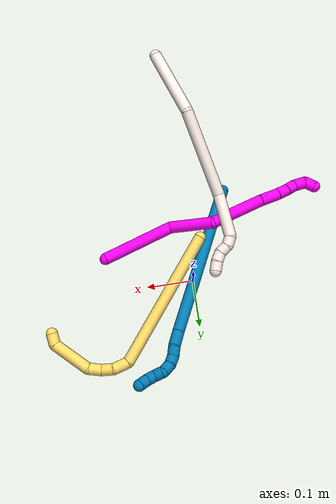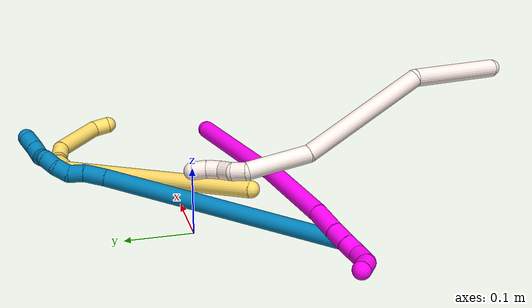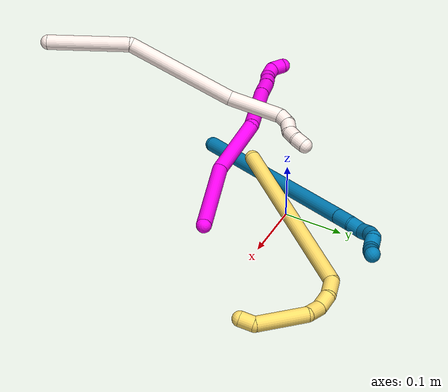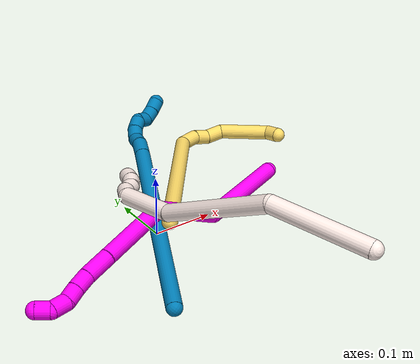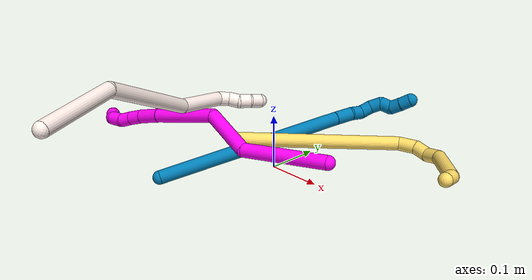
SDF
<sdf version="1.7">
 <world name="default">
  <model name="photoneo_s_sensor">
   <static>1</static>
   <pose>0 0 2 1.57079 1.57079 3.14159</pose>
   <link name="link">
    <inertial><mass>0.1</mass></inertial>
    <sensor name="sensor" type="depth">
     <update_rate>30</update_rate>
     <camera>
      <horizontal_fov>1.22</horizontal_fov>
      <image><width>1920</width><height>1200</height><format>B8G8R8</format></image>
      <clip><near>0.1</near><far>4</far></clip>
      <depth_camera><output>points</output></depth_camera>
     </camera>
     <plugin name="camera_plugin" filename="libgazebo_ros_depth_camera.so">
      <baseline>0.2</baseline>
      <alwaysOn>1</alwaysOn>
      <updateRate>0.0</updateRate>
      <cameraName>camera_ir</cameraName>
      <imageTopicName>/camera/color/image_raw</imageTopicName>
      <cameraInfoTopicName>/camera/color/camera_info</cameraInfoTopicName>
      <depthImageTopicName>/camera/depth/image_raw</depthImageTopicName>
      <depthImageCameraInfoTopicName>/camera/depth/camera_info</depthImageCameraInfoTopicName>
      <pointCloudTopicName>/camera/depth/points</pointCloudTopicName>
      <frameName>fr_optical</frameName>
      <pointCloudCutoff>0.1</pointCloudCutoff>
      <pointCloudCutoffMax>2.0</pointCloudCutoffMax>
      <distortionK1>0</distortionK1>
      <distortionK2>0</distortionK2>
      <distortionK3>0</distortionK3>
      <distortionT1>0</distortionT1>
      <distortionT2>0</distortionT2>
      <CxPrime>0</CxPrime>
      <Cx>0</Cx>
      <Cy>0</Cy>
      <focalLength>0</focalLength>
      <hackBaseline>0</hackBaseline>
     </plugin>
    </sensor>
   </link>
  </model>
  <model name="bin">
   <static>1</static>
   <link name="bottom">
    <collision name="collision-bottom">
     <pose>0 0 -0.01 0 -0 0</pose>
     <geometry><box><size>0.8 0.6 0.02</size></box></geometry>
     <surface>
      <friction><ode><mu>100</mu><mu2>100</mu2></ode></friction>
      <contact><collide_bitmask>65535</collide_bitmask></contact>
     </surface>
    </collision>
   </link>
   <link name="west_wall">
    <collision name="collision-west_wall">
     <pose>-0.41 0 0.1 0 -0 0</pose>
     <geometry><box><size>0.02 0.6 0.2</size></box></geometry>
     <surface>
      <friction><ode><mu>100</mu><mu2>100</mu2></ode></friction>
      <contact><collide_bitmask>65535</collide_bitmask></contact>
     </surface>
    </collision>
   </link>
   <link name="east_wall">
    <collision name="collision-east_wall">
     <pose>0.41 0 0.1 0 -0 0</pose>
     <geometry><box><size>0.02 0.6 0.2</size></box></geometry>
     <surface>
      <friction><ode><mu>100</mu><mu2>100</mu2></ode></friction>
      <contact><collide_bitmask>65535</collide_bitmask></contact>
     </surface>
    </collision>
   </link>
   <link name="south_wall">
    <collision name="collision-south_wall">
     <pose>0 -0.31 0.1 0 -0 0</pose>
     <geometry><box><size>0.8 0.02 0.2</size></box></geometry>
     <surface>
      <friction><ode><mu>100</mu><mu2>100</mu2></ode></friction>
      <contact><collide_bitmask>65535</collide_bitmask></contact>
     </surface>
    </collision>
   </link>
   <link name="north_wall">
    <collision name="collision-north_wall">
     <pose>0 0.31 0.1 0 -0 0</pose>
     <geometry><box><size>0.8 0.02 0.2</size></box></geometry>
     <surface>
      <friction><ode><mu>100</mu><mu2>100</mu2></ode></friction>
      <contact><collide_bitmask>65535</collide_bitmask></contact>
     </surface>
    </collision>
   </link>
  </model>
  <model name="5">
   <static>0</static>
   <link name="5">
    <collision name="collision-cylinder-e_1_1_4">
     <pose>0.017879 0.034262 0.146194 -0.230203 0.11851 -0.013717</pose>
     <geometry><cylinder><radius>0.0125</radius><length>0.302432</length></cylinder></geometry>
     <surface>
      <friction><ode><mu>1.16</mu><mu2>1.16</mu2><slip1>0</slip1><slip2>0</slip2></ode></friction>
      <contact><ode><kp>1e+06</kp><kd>1</kd><max_vel>0</max_vel><min_depth>0.001</min_depth></ode></contact>
     </surface>
    </collision>
    <visual name="visual-cylinder-e_1_1_4">
     <pose>0.017879 0.034262 0.146194 -0.230203 0.11851 -0.013717</pose>
     <geometry><cylinder><radius>0.0125</radius><length>0.302432</length></cylinder></geometry>
     <material><ambient>1 0.858824 0.4 1</ambient></material>
    </visual>
    <collision name="collision-cylinder-e_2_4_5">
     <pose>0.046618 0.073848 0.303753 -0.438151 0.713349 -0.165544</pose>
     <geometry><cylinder><radius>0.0125</radius><length>0.033194</length></cylinder></geometry>
     <surface>
      <friction><ode><mu>1.16</mu><mu2>1.16</mu2><slip1>0</slip1><slip2>0</slip2></ode></friction>
      <contact><ode><kp>1e+06</kp><kd>1</kd><max_vel>0</max_vel><min_depth>0.001</min_depth></ode></contact>
     </surface>
    </collision>
    <visual name="visual-cylinder-e_2_4_5">
     <pose>0.046618 0.073848 0.303753 -0.438151 0.713349 -0.165544</pose>
     <geometry><cylinder><radius>0.0125</radius><length>0.033194</length></cylinder></geometry>
     <material><ambient>1 0.858824 0.4 1</ambient></material>
    </visual>
    <collision name="collision-cylinder-e_3_5_6">
     <pose>0.067691 0.08614 0.319669 -0.99213 0.887061 -0.503349</pose>
     <geometry><cylinder><radius>0.0125</radius><length>0.026348</length></cylinder></geometry>
     <surface>
      <friction><ode><mu>1.16</mu><mu2>1.16</mu2><slip1>0</slip1><slip2>0</slip2></ode></friction>
      <contact><ode><kp>1e+06</kp><kd>1</kd><max_vel>0</max_vel><min_depth>0.001</min_depth></ode></contact>
     </surface>
    </collision>
    <visual name="visual-cylinder-e_3_5_6">
     <pose>0.067691 0.08614 0.319669 -0.99213 0.887061 -0.503349</pose>
     <geometry><cylinder><radius>0.0125</radius><length>0.026348</length></cylinder></geometry>
     <material><ambient>1 0.858824 0.4 1</ambient></material>
    </visual>
    <collision name="collision-cylinder-e_4_6_7">
     <pose>0.091731 0.094982 0.327974 -0.463251 1.27618 -0.346314</pose>
     <geometry><cylinder><radius>0.0125</radius><length>0.0289</length></cylinder></geometry>
     <surface>
      <friction><ode><mu>1.16</mu><mu2>1.16</mu2><slip1>0</slip1><slip2>0</slip2></ode></friction>
      <contact><ode><kp>1e+06</kp><kd>1</kd><max_vel>0</max_vel><min_depth>0.001</min_depth></ode></contact>
     </surface>
    </collision>
    <visual name="visual-cylinder-e_4_6_7">
     <pose>0.091731 0.094982 0.327974 -0.463251 1.27618 -0.346314</pose>
     <geometry><cylinder><radius>0.0125</radius><length>0.0289</length></cylinder></geometry>
     <material><ambient>1 0.858824 0.4 1</ambient></material>
    </visual>
    <collision name="collision-cylinder-e_5_7_8">
     <pose>0.145317 0.106813 0.320263 -2.42655 1.20597 -2.14735</pose>
     <geometry><cylinder><radius>0.0125</radius><length>0.085119</length></cylinder></geometry>
     <surface>
      <friction><ode><mu>1.16</mu><mu2>1.16</mu2><slip1>0</slip1><slip2>0</slip2></ode></friction>
      <contact><ode><kp>1e+06</kp><kd>1</kd><max_vel>0</max_vel><min_depth>0.001</min_depth></ode></contact>
     </surface>
    </collision>
    <visual name="visual-cylinder-e_5_7_8">
     <pose>0.145317 0.106813 0.320263 -2.42655 1.20597 -2.14735</pose>
     <geometry><cylinder><radius>0.0125</radius><length>0.085119</length></cylinder></geometry>
     <material><ambient>1 0.858824 0.4 1</ambient></material>
    </visual>
    <collision name="collision-cylinder-e_6_8_2">
     <pose>0.192521 0.116312 0.299392 3.09316 0.669044 3.00245</pose>
     <geometry><cylinder><radius>0.0125</radius><length>0.024007</length></cylinder></geometry>
     <surface>
      <friction><ode><mu>1.16</mu><mu2>1.16</mu2><slip1>0</slip1><slip2>0</slip2></ode></friction>
      <contact><ode><kp>1e+06</kp><kd>1</kd><max_vel>0</max_vel><min_depth>0.001</min_depth></ode></contact>
     </surface>
    </collision>
    <visual name="visual-cylinder-e_6_8_2">
     <pose>0.192521 0.116312 0.299392 3.09316 0.669044 3.00245</pose>
     <geometry><cylinder><radius>0.0125</radius><length>0.024007</length></cylinder></geometry>
     <material><ambient>1 0.858824 0.4 1</ambient></material>
    </visual>
    <collision name="collision-sphere-2">
     <pose>0.199966 0.115857 0.289988 0 -0 0</pose>
     <geometry><sphere><radius>0.0125</radius></sphere></geometry>
     <surface>
      <friction><ode><mu>1.16</mu><mu2>1.16</mu2><slip1>0</slip1><slip2>0</slip2></ode></friction>
      <contact><ode><kp>1e+06</kp><kd>1</kd><max_vel>0</max_vel><min_depth>0.001</min_depth></ode></contact>
     </surface>
    </collision>
    <visual name="visual-sphere-2">
     <pose>0.199966 0.115857 0.289988 0 -0 0</pose>
     <geometry><sphere><radius>0.0125</radius></sphere></geometry>
     <material><ambient>1 0.858824 0.4 1</ambient></material>
    </visual>
    <collision name="collision-sphere-4">
     <pose>0.035757 0.068524 0.292389 0 -0 0</pose>
     <geometry><sphere><radius>0.0125</radius></sphere></geometry>
     <surface>
      <friction><ode><mu>1.16</mu><mu2>1.16</mu2><slip1>0</slip1><slip2>0</slip2></ode></friction>
      <contact><ode><kp>1e+06</kp><kd>1</kd><max_vel>0</max_vel><min_depth>0.001</min_depth></ode></contact>
     </surface>
    </collision>
    <visual name="visual-sphere-4">
     <pose>0.035757 0.068524 0.292389 0 -0 0</pose>
     <geometry><sphere><radius>0.0125</radius></sphere></geometry>
     <material><ambient>1 0.858824 0.4 1</ambient></material>
    </visual>
    <collision name="collision-sphere-1">
     <geometry><sphere><radius>0.0125</radius></sphere></geometry>
     <surface>
      <friction><ode><mu>1.16</mu><mu2>1.16</mu2><slip1>0</slip1><slip2>0</slip2></ode></friction>
      <contact><ode><kp>1e+06</kp><kd>1</kd><max_vel>0</max_vel><min_depth>0.001</min_depth></ode></contact>
     </surface>
    </collision>
    <visual name="visual-sphere-1">
     <geometry><sphere><radius>0.0125</radius></sphere></geometry>
     <material><ambient>1 0.858824 0.4 1</ambient></material>
    </visual>
    <collision name="collision-sphere-8">
     <pose>0.185076 0.116768 0.308797 0 -0 0</pose>
     <geometry><sphere><radius>0.0125</radius></sphere></geometry>
     <surface>
      <friction><ode><mu>1.16</mu><mu2>1.16</mu2><slip1>0</slip1><slip2>0</slip2></ode></friction>
      <contact><ode><kp>1e+06</kp><kd>1</kd><max_vel>0</max_vel><min_depth>0.001</min_depth></ode></contact>
     </surface>
    </collision>
    <visual name="visual-sphere-8">
     <pose>0.185076 0.116768 0.308797 0 -0 0</pose>
     <geometry><sphere><radius>0.0125</radius></sphere></geometry>
     <material><ambient>1 0.858824 0.4 1</ambient></material>
    </visual>
    <collision name="collision-sphere-5">
     <pose>0.057478 0.079173 0.315118 0 -0 0</pose>
     <geometry><sphere><radius>0.0125</radius></sphere></geometry>
     <surface>
      <friction><ode><mu>1.16</mu><mu2>1.16</mu2><slip1>0</slip1><slip2>0</slip2></ode></friction>
      <contact><ode><kp>1e+06</kp><kd>1</kd><max_vel>0</max_vel><min_depth>0.001</min_depth></ode></contact>
     </surface>
    </collision>
    <visual name="visual-sphere-5">
     <pose>0.057478 0.079173 0.315118 0 -0 0</pose>
     <geometry><sphere><radius>0.0125</radius></sphere></geometry>
     <material><ambient>1 0.858824 0.4 1</ambient></material>
    </visual>
    <collision name="collision-sphere-6">
     <pose>0.077904 0.093107 0.324221 0 -0 0</pose>
     <geometry><sphere><radius>0.0125</radius></sphere></geometry>
     <surface>
      <friction><ode><mu>1.16</mu><mu2>1.16</mu2><slip1>0</slip1><slip2>0</slip2></ode></friction>
      <contact><ode><kp>1e+06</kp><kd>1</kd><max_vel>0</max_vel><min_depth>0.001</min_depth></ode></contact>
     </surface>
    </collision>
    <visual name="visual-sphere-6">
     <pose>0.077904 0.093107 0.324221 0 -0 0</pose>
     <geometry><sphere><radius>0.0125</radius></sphere></geometry>
     <material><ambient>1 0.858824 0.4 1</ambient></material>
    </visual>
    <collision name="collision-sphere-7">
     <pose>0.105559 0.096857 0.331728 0 -0 0</pose>
     <geometry><sphere><radius>0.0125</radius></sphere></geometry>
     <surface>
      <friction><ode><mu>1.16</mu><mu2>1.16</mu2><slip1>0</slip1><slip2>0</slip2></ode></friction>
      <contact><ode><kp>1e+06</kp><kd>1</kd><max_vel>0</max_vel><min_depth>0.001</min_depth></ode></contact>
     </surface>
    </collision>
    <visual name="visual-sphere-7">
     <pose>0.105559 0.096857 0.331728 0 -0 0</pose>
     <geometry><sphere><radius>0.0125</radius></sphere></geometry>
     <material><ambient>1 0.858824 0.4 1</ambient></material>
    </visual>
    <inertial>
     <pose>0.05676 0.059424 0.213291 0 -0 0</pose>
     <mass>0.5</mass>
     <inertia>
      <ixx>0.00226</ixx>
      <ixy>0</ixy>
      <ixz>0</ixz>
      <iyy>0.002278</iyy>
      <iyz>0</iyz>
      <izz>-0.000852</izz>
     </inertia>
    </inertial>
   </link>
   <pose>-0.025703 -0.077413 0.071889 -1.46341 -0.320662 -0.512659</pose>
  </model>
  <model name="9">
   <static>0</static>
   <link name="9">
    <collision name="collision-cylinder-e_1_1_4">
     <pose>0.099674 0.120985 0.069833 -1.04731 0.619743 -0.365637</pose>
     <geometry><cylinder><radius>0.0125</radius><length>0.343214</length></cylinder></geometry>
     <surface>
      <friction><ode><mu>1.16</mu><mu2>1.16</mu2><slip1>0</slip1><slip2>0</slip2></ode></friction>
      <contact><ode><kp>1e+06</kp><kd>1</kd><max_vel>0</max_vel><min_depth>0.001</min_depth></ode></contact>
     </surface>
    </collision>
    <visual name="visual-cylinder-e_1_1_4">
     <pose>0.099674 0.120985 0.069833 -1.04731 0.619743 -0.365637</pose>
     <geometry><cylinder><radius>0.0125</radius><length>0.343214</length></cylinder></geometry>
     <material><ambient>0 0.490196 0.709804 1</ambient></material>
    </visual>
    <collision name="collision-cylinder-e_2_4_5">
     <pose>0.207796 0.253346 0.145962 -1.06529 0.576231 -0.345905</pose>
     <geometry><cylinder><radius>0.0125</radius><length>0.03101</length></cylinder></geometry>
     <surface>
      <friction><ode><mu>1.16</mu><mu2>1.16</mu2><slip1>0</slip1><slip2>0</slip2></ode></friction>
      <contact><ode><kp>1e+06</kp><kd>1</kd><max_vel>0</max_vel><min_depth>0.001</min_depth></ode></contact>
     </surface>
    </collision>
    <visual name="visual-cylinder-e_2_4_5">
     <pose>0.207796 0.253346 0.145962 -1.06529 0.576231 -0.345905</pose>
     <geometry><cylinder><radius>0.0125</radius><length>0.03101</length></cylinder></geometry>
     <material><ambient>0 0.490196 0.709804 1</ambient></material>
    </visual>
    <collision name="collision-cylinder-e_3_5_6">
     <pose>0.219702 0.274394 0.156488 -1.15857 0.316567 -0.208075</pose>
     <geometry><cylinder><radius>0.0125</radius><length>0.02222</length></cylinder></geometry>
     <surface>
      <friction><ode><mu>1.16</mu><mu2>1.16</mu2><slip1>0</slip1><slip2>0</slip2></ode></friction>
      <contact><ode><kp>1e+06</kp><kd>1</kd><max_vel>0</max_vel><min_depth>0.001</min_depth></ode></contact>
     </surface>
    </collision>
    <visual name="visual-cylinder-e_3_5_6">
     <pose>0.219702 0.274394 0.156488 -1.15857 0.316567 -0.208075</pose>
     <geometry><cylinder><radius>0.0125</radius><length>0.02222</length></cylinder></geometry>
     <material><ambient>0 0.490196 0.709804 1</ambient></material>
    </visual>
    <collision name="collision-cylinder-e_4_6_7">
     <pose>0.230701 0.289702 0.165774 -0.839428 0.783352 -0.364509</pose>
     <geometry><cylinder><radius>0.0125</radius><length>0.02137</length></cylinder></geometry>
     <surface>
      <friction><ode><mu>1.16</mu><mu2>1.16</mu2><slip1>0</slip1><slip2>0</slip2></ode></friction>
      <contact><ode><kp>1e+06</kp><kd>1</kd><max_vel>0</max_vel><min_depth>0.001</min_depth></ode></contact>
     </surface>
    </collision>
    <visual name="visual-cylinder-e_4_6_7">
     <pose>0.230701 0.289702 0.165774 -0.839428 0.783352 -0.364509</pose>
     <geometry><cylinder><radius>0.0125</radius><length>0.02137</length></cylinder></geometry>
     <material><ambient>0 0.490196 0.709804 1</ambient></material>
    </visual>
    <collision name="collision-cylinder-e_5_7_8">
     <pose>0.247518 0.300142 0.172781 -1.18519 1.06107 -0.752368</pose>
     <geometry><cylinder><radius>0.0125</radius><length>0.021258</length></cylinder></geometry>
     <surface>
      <friction><ode><mu>1.16</mu><mu2>1.16</mu2><slip1>0</slip1><slip2>0</slip2></ode></friction>
      <contact><ode><kp>1e+06</kp><kd>1</kd><max_vel>0</max_vel><min_depth>0.001</min_depth></ode></contact>
     </surface>
    </collision>
    <visual name="visual-cylinder-e_5_7_8">
     <pose>0.247518 0.300142 0.172781 -1.18519 1.06107 -0.752368</pose>
     <geometry><cylinder><radius>0.0125</radius><length>0.021258</length></cylinder></geometry>
     <material><ambient>0 0.490196 0.709804 1</ambient></material>
    </visual>
    <collision name="collision-cylinder-e_6_8_9">
     <pose>0.26346 0.310726 0.169526 -2.3041 0.708491 -1.38671</pose>
     <geometry><cylinder><radius>0.0125</radius><length>0.020484</length></cylinder></geometry>
     <surface>
      <friction><ode><mu>1.16</mu><mu2>1.16</mu2><slip1>0</slip1><slip2>0</slip2></ode></friction>
      <contact><ode><kp>1e+06</kp><kd>1</kd><max_vel>0</max_vel><min_depth>0.001</min_depth></ode></contact>
     </surface>
    </collision>
    <visual name="visual-cylinder-e_6_8_9">
     <pose>0.26346 0.310726 0.169526 -2.3041 0.708491 -1.38671</pose>
     <geometry><cylinder><radius>0.0125</radius><length>0.020484</length></cylinder></geometry>
     <material><ambient>0 0.490196 0.709804 1</ambient></material>
    </visual>
    <collision name="collision-cylinder-e_7_9_10">
     <pose>0.280027 0.318917 0.164629 -1.4437 1.32987 -1.20828</pose>
     <geometry><cylinder><radius>0.0125</radius><length>0.020394</length></cylinder></geometry>
     <surface>
      <friction><ode><mu>1.16</mu><mu2>1.16</mu2><slip1>0</slip1><slip2>0</slip2></ode></friction>
      <contact><ode><kp>1e+06</kp><kd>1</kd><max_vel>0</max_vel><min_depth>0.001</min_depth></ode></contact>
     </surface>
    </collision>
    <visual name="visual-cylinder-e_7_9_10">
     <pose>0.280027 0.318917 0.164629 -1.4437 1.32987 -1.20828</pose>
     <geometry><cylinder><radius>0.0125</radius><length>0.020394</length></cylinder></geometry>
     <material><ambient>0 0.490196 0.709804 1</ambient></material>
    </visual>
    <collision name="collision-cylinder-e_8_10_2">
     <pose>0.299491 0.32407 0.166198 -1.13953 1.26525 -0.878196</pose>
     <geometry><cylinder><radius>0.0125</radius><length>0.020051</length></cylinder></geometry>
     <surface>
      <friction><ode><mu>1.16</mu><mu2>1.16</mu2><slip1>0</slip1><slip2>0</slip2></ode></friction>
      <contact><ode><kp>1e+06</kp><kd>1</kd><max_vel>0</max_vel><min_depth>0.001</min_depth></ode></contact>
     </surface>
    </collision>
    <visual name="visual-cylinder-e_8_10_2">
     <pose>0.299491 0.32407 0.166198 -1.13953 1.26525 -0.878196</pose>
     <geometry><cylinder><radius>0.0125</radius><length>0.020051</length></cylinder></geometry>
     <material><ambient>0 0.490196 0.709804 1</ambient></material>
    </visual>
    <collision name="collision-sphere-2">
     <pose>0.309052 0.32681 0.167459 0 -0 0</pose>
     <geometry><sphere><radius>0.0125</radius></sphere></geometry>
     <surface>
      <friction><ode><mu>1.16</mu><mu2>1.16</mu2><slip1>0</slip1><slip2>0</slip2></ode></friction>
      <contact><ode><kp>1e+06</kp><kd>1</kd><max_vel>0</max_vel><min_depth>0.001</min_depth></ode></contact>
     </surface>
    </collision>
    <visual name="visual-sphere-2">
     <pose>0.309052 0.32681 0.167459 0 -0 0</pose>
     <geometry><sphere><radius>0.0125</radius></sphere></geometry>
     <material><ambient>0 0.490196 0.709804 1</ambient></material>
    </visual>
    <collision name="collision-sphere-10">
     <pose>0.28993 0.321331 0.164938 0 -0 0</pose>
     <geometry><sphere><radius>0.0125</radius></sphere></geometry>
     <surface>
      <friction><ode><mu>1.16</mu><mu2>1.16</mu2><slip1>0</slip1><slip2>0</slip2></ode></friction>
      <contact><ode><kp>1e+06</kp><kd>1</kd><max_vel>0</max_vel><min_depth>0.001</min_depth></ode></contact>
     </surface>
    </collision>
    <visual name="visual-sphere-10">
     <pose>0.28993 0.321331 0.164938 0 -0 0</pose>
     <geometry><sphere><radius>0.0125</radius></sphere></geometry>
     <material><ambient>0 0.490196 0.709804 1</ambient></material>
    </visual>
    <collision name="collision-sphere-9">
     <pose>0.270125 0.316504 0.164321 0 -0 0</pose>
     <geometry><sphere><radius>0.0125</radius></sphere></geometry>
     <surface>
      <friction><ode><mu>1.16</mu><mu2>1.16</mu2><slip1>0</slip1><slip2>0</slip2></ode></friction>
      <contact><ode><kp>1e+06</kp><kd>1</kd><max_vel>0</max_vel><min_depth>0.001</min_depth></ode></contact>
     </surface>
    </collision>
    <visual name="visual-sphere-9">
     <pose>0.270125 0.316504 0.164321 0 -0 0</pose>
     <geometry><sphere><radius>0.0125</radius></sphere></geometry>
     <material><ambient>0 0.490196 0.709804 1</ambient></material>
    </visual>
    <collision name="collision-sphere-4">
     <pose>0.199348 0.241971 0.139666 0 -0 0</pose>
     <geometry><sphere><radius>0.0125</radius></sphere></geometry>
     <surface>
      <friction><ode><mu>1.16</mu><mu2>1.16</mu2><slip1>0</slip1><slip2>0</slip2></ode></friction>
      <contact><ode><kp>1e+06</kp><kd>1</kd><max_vel>0</max_vel><min_depth>0.001</min_depth></ode></contact>
     </surface>
    </collision>
    <visual name="visual-sphere-4">
     <pose>0.199348 0.241971 0.139666 0 -0 0</pose>
     <geometry><sphere><radius>0.0125</radius></sphere></geometry>
     <material><ambient>0 0.490196 0.709804 1</ambient></material>
    </visual>
    <collision name="collision-sphere-1">
     <geometry><sphere><radius>0.0125</radius></sphere></geometry>
     <surface>
      <friction><ode><mu>1.16</mu><mu2>1.16</mu2><slip1>0</slip1><slip2>0</slip2></ode></friction>
      <contact><ode><kp>1e+06</kp><kd>1</kd><max_vel>0</max_vel><min_depth>0.001</min_depth></ode></contact>
     </surface>
    </collision>
    <visual name="visual-sphere-1">
     <geometry><sphere><radius>0.0125</radius></sphere></geometry>
     <material><ambient>0 0.490196 0.709804 1</ambient></material>
    </visual>
    <collision name="collision-sphere-8">
     <pose>0.256796 0.304948 0.174732 0 -0 0</pose>
     <geometry><sphere><radius>0.0125</radius></sphere></geometry>
     <surface>
      <friction><ode><mu>1.16</mu><mu2>1.16</mu2><slip1>0</slip1><slip2>0</slip2></ode></friction>
      <contact><ode><kp>1e+06</kp><kd>1</kd><max_vel>0</max_vel><min_depth>0.001</min_depth></ode></contact>
     </surface>
    </collision>
    <visual name="visual-sphere-8">
     <pose>0.256796 0.304948 0.174732 0 -0 0</pose>
     <geometry><sphere><radius>0.0125</radius></sphere></geometry>
     <material><ambient>0 0.490196 0.709804 1</ambient></material>
    </visual>
    <collision name="collision-sphere-5">
     <pose>0.216244 0.264721 0.152258 0 -0 0</pose>
     <geometry><sphere><radius>0.0125</radius></sphere></geometry>
     <surface>
      <friction><ode><mu>1.16</mu><mu2>1.16</mu2><slip1>0</slip1><slip2>0</slip2></ode></friction>
      <contact><ode><kp>1e+06</kp><kd>1</kd><max_vel>0</max_vel><min_depth>0.001</min_depth></ode></contact>
     </surface>
    </collision>
    <visual name="visual-sphere-5">
     <pose>0.216244 0.264721 0.152258 0 -0 0</pose>
     <geometry><sphere><radius>0.0125</radius></sphere></geometry>
     <material><ambient>0 0.490196 0.709804 1</ambient></material>
    </visual>
    <collision name="collision-sphere-6">
     <pose>0.223161 0.284068 0.160718 0 -0 0</pose>
     <geometry><sphere><radius>0.0125</radius></sphere></geometry>
     <surface>
      <friction><ode><mu>1.16</mu><mu2>1.16</mu2><slip1>0</slip1><slip2>0</slip2></ode></friction>
      <contact><ode><kp>1e+06</kp><kd>1</kd><max_vel>0</max_vel><min_depth>0.001</min_depth></ode></contact>
     </surface>
    </collision>
    <visual name="visual-sphere-6">
     <pose>0.223161 0.284068 0.160718 0 -0 0</pose>
     <geometry><sphere><radius>0.0125</radius></sphere></geometry>
     <material><ambient>0 0.490196 0.709804 1</ambient></material>
    </visual>
    <collision name="collision-sphere-7">
     <pose>0.238241 0.295337 0.170831 0 -0 0</pose>
     <geometry><sphere><radius>0.0125</radius></sphere></geometry>
     <surface>
      <friction><ode><mu>1.16</mu><mu2>1.16</mu2><slip1>0</slip1><slip2>0</slip2></ode></friction>
      <contact><ode><kp>1e+06</kp><kd>1</kd><max_vel>0</max_vel><min_depth>0.001</min_depth></ode></contact>
     </surface>
    </collision>
    <visual name="visual-sphere-7">
     <pose>0.238241 0.295337 0.170831 0 -0 0</pose>
     <geometry><sphere><radius>0.0125</radius></sphere></geometry>
     <material><ambient>0 0.490196 0.709804 1</ambient></material>
    </visual>
    <inertial>
     <pose>0.145679 0.17483 0.098698 0 -0 0</pose>
     <mass>0.5</mass>
     <inertia>
      <ixx>0.001614</ixx>
      <ixy>0</ixy>
      <ixz>0</ixz>
      <iyy>0.001234</iyy>
      <iyz>0</iyz>
      <izz>-0.004353</izz>
     </inertia>
    </inertial>
   </link>
   <pose>-0.093689 -0.189543 0.011494 -0.743669 -0.623803 0.19105</pose>
  </model>
  <model name="10">
   <static>0</static>
   <link name="10">
    <collision name="collision-cylinder-e_1_1_4">
     <pose>-0.049679 0.005184 -0.057835 -3.0522 -0.707701 2.9006</pose>
     <geometry><cylinder><radius>0.0125</radius><length>0.152837</length></cylinder></geometry>
     <surface>
      <friction><ode><mu>1.16</mu><mu2>1.16</mu2><slip1>0</slip1><slip2>0</slip2></ode></friction>
      <contact><ode><kp>1e+06</kp><kd>1</kd><max_vel>0</max_vel><min_depth>0.001</min_depth></ode></contact>
     </surface>
    </collision>
    <visual name="visual-cylinder-e_1_1_4">
     <pose>-0.049679 0.005184 -0.057835 -3.0522 -0.707701 2.9006</pose>
     <geometry><cylinder><radius>0.0125</radius><length>0.152837</length></cylinder></geometry>
     <material><ambient>1 0 0.964706 1</ambient></material>
    </visual>
    <collision name="collision-cylinder-e_2_4_5">
     <pose>-0.14543 0.017015 -0.127473 -2.62867 -1.28485 2.46747</pose>
     <geometry><cylinder><radius>0.0125</radius><length>0.096046</length></cylinder></geometry>
     <surface>
      <friction><ode><mu>1.16</mu><mu2>1.16</mu2><slip1>0</slip1><slip2>0</slip2></ode></friction>
      <contact><ode><kp>1e+06</kp><kd>1</kd><max_vel>0</max_vel><min_depth>0.001</min_depth></ode></contact>
     </surface>
    </collision>
    <visual name="visual-cylinder-e_2_4_5">
     <pose>-0.14543 0.017015 -0.127473 -2.62867 -1.28485 2.46747</pose>
     <geometry><cylinder><radius>0.0125</radius><length>0.096046</length></cylinder></geometry>
     <material><ambient>1 0 0.964706 1</ambient></material>
    </visual>
    <collision name="collision-cylinder-e_3_5_6">
     <pose>-0.224854 0.031509 -0.18652 -2.97702 -0.608299 2.62772</pose>
     <geometry><cylinder><radius>0.0125</radius><length>0.116721</length></cylinder></geometry>
     <surface>
      <friction><ode><mu>1.16</mu><mu2>1.16</mu2><slip1>0</slip1><slip2>0</slip2></ode></friction>
      <contact><ode><kp>1e+06</kp><kd>1</kd><max_vel>0</max_vel><min_depth>0.001</min_depth></ode></contact>
     </surface>
    </collision>
    <visual name="visual-cylinder-e_3_5_6">
     <pose>-0.224854 0.031509 -0.18652 -2.97702 -0.608299 2.62772</pose>
     <geometry><cylinder><radius>0.0125</radius><length>0.116721</length></cylinder></geometry>
     <material><ambient>1 0 0.964706 1</ambient></material>
    </visual>
    <collision name="collision-cylinder-e_4_6_7">
     <pose>-0.269545 0.043892 -0.250429 -2.87576 -0.580977 2.30045</pose>
     <geometry><cylinder><radius>0.0125</radius><length>0.041322</length></cylinder></geometry>
     <surface>
      <friction><ode><mu>1.16</mu><mu2>1.16</mu2><slip1>0</slip1><slip2>0</slip2></ode></friction>
      <contact><ode><kp>1e+06</kp><kd>1</kd><max_vel>0</max_vel><min_depth>0.001</min_depth></ode></contact>
     </surface>
    </collision>
    <visual name="visual-cylinder-e_4_6_7">
     <pose>-0.269545 0.043892 -0.250429 -2.87576 -0.580977 2.30045</pose>
     <geometry><cylinder><radius>0.0125</radius><length>0.041322</length></cylinder></geometry>
     <material><ambient>1 0 0.964706 1</ambient></material>
    </visual>
    <collision name="collision-cylinder-e_5_7_8">
     <pose>-0.286606 0.050615 -0.2778 -2.94025 -0.482318 2.36218</pose>
     <geometry><cylinder><radius>0.0125</radius><length>0.024668</length></cylinder></geometry>
     <surface>
      <friction><ode><mu>1.16</mu><mu2>1.16</mu2><slip1>0</slip1><slip2>0</slip2></ode></friction>
      <contact><ode><kp>1e+06</kp><kd>1</kd><max_vel>0</max_vel><min_depth>0.001</min_depth></ode></contact>
     </surface>
    </collision>
    <visual name="visual-cylinder-e_5_7_8">
     <pose>-0.286606 0.050615 -0.2778 -2.94025 -0.482318 2.36218</pose>
     <geometry><cylinder><radius>0.0125</radius><length>0.024668</length></cylinder></geometry>
     <material><ambient>1 0 0.964706 1</ambient></material>
    </visual>
    <collision name="collision-cylinder-e_6_8_9">
     <pose>-0.296703 0.054357 -0.298433 -2.98598 -0.410785 2.4254</pose>
     <geometry><cylinder><radius>0.0125</radius><length>0.02192</length></cylinder></geometry>
     <surface>
      <friction><ode><mu>1.16</mu><mu2>1.16</mu2><slip1>0</slip1><slip2>0</slip2></ode></friction>
      <contact><ode><kp>1e+06</kp><kd>1</kd><max_vel>0</max_vel><min_depth>0.001</min_depth></ode></contact>
     </surface>
    </collision>
    <visual name="visual-cylinder-e_6_8_9">
     <pose>-0.296703 0.054357 -0.298433 -2.98598 -0.410785 2.4254</pose>
     <geometry><cylinder><radius>0.0125</radius><length>0.02192</length></cylinder></geometry>
     <material><ambient>1 0 0.964706 1</ambient></material>
    </visual>
    <collision name="collision-cylinder-e_7_9_10">
     <pose>-0.310164 0.058334 -0.316675 -2.8585 -0.809275 2.49917</pose>
     <geometry><cylinder><radius>0.0125</radius><length>0.025101</length></cylinder></geometry>
     <surface>
      <friction><ode><mu>1.16</mu><mu2>1.16</mu2><slip1>0</slip1><slip2>0</slip2></ode></friction>
      <contact><ode><kp>1e+06</kp><kd>1</kd><max_vel>0</max_vel><min_depth>0.001</min_depth></ode></contact>
     </surface>
    </collision>
    <visual name="visual-cylinder-e_7_9_10">
     <pose>-0.310164 0.058334 -0.316675 -2.8585 -0.809275 2.49917</pose>
     <geometry><cylinder><radius>0.0125</radius><length>0.025101</length></cylinder></geometry>
     <material><ambient>1 0 0.964706 1</ambient></material>
    </visual>
    <collision name="collision-cylinder-e_8_10_2">
     <pose>-0.327319 0.067699 -0.325966 -1.71027 -0.85532 0.965718</pose>
     <geometry><cylinder><radius>0.0125</radius><length>0.021386</length></cylinder></geometry>
     <surface>
      <friction><ode><mu>1.16</mu><mu2>1.16</mu2><slip1>0</slip1><slip2>0</slip2></ode></friction>
      <contact><ode><kp>1e+06</kp><kd>1</kd><max_vel>0</max_vel><min_depth>0.001</min_depth></ode></contact>
     </surface>
    </collision>
    <visual name="visual-cylinder-e_8_10_2">
     <pose>-0.327319 0.067699 -0.325966 -1.71027 -0.85532 0.965718</pose>
     <geometry><cylinder><radius>0.0125</radius><length>0.021386</length></cylinder></geometry>
     <material><ambient>1 0 0.964706 1</ambient></material>
    </visual>
    <collision name="collision-sphere-2">
     <pose>-0.33539 0.074645 -0.326941 0 -0 0</pose>
     <geometry><sphere><radius>0.0125</radius></sphere></geometry>
     <surface>
      <friction><ode><mu>1.16</mu><mu2>1.16</mu2><slip1>0</slip1><slip2>0</slip2></ode></friction>
      <contact><ode><kp>1e+06</kp><kd>1</kd><max_vel>0</max_vel><min_depth>0.001</min_depth></ode></contact>
     </surface>
    </collision>
    <visual name="visual-sphere-2">
     <pose>-0.33539 0.074645 -0.326941 0 -0 0</pose>
     <geometry><sphere><radius>0.0125</radius></sphere></geometry>
     <material><ambient>1 0 0.964706 1</ambient></material>
    </visual>
    <collision name="collision-sphere-10">
     <pose>-0.319248 0.060753 -0.324991 0 -0 0</pose>
     <geometry><sphere><radius>0.0125</radius></sphere></geometry>
     <surface>
      <friction><ode><mu>1.16</mu><mu2>1.16</mu2><slip1>0</slip1><slip2>0</slip2></ode></friction>
      <contact><ode><kp>1e+06</kp><kd>1</kd><max_vel>0</max_vel><min_depth>0.001</min_depth></ode></contact>
     </surface>
    </collision>
    <visual name="visual-sphere-10">
     <pose>-0.319248 0.060753 -0.324991 0 -0 0</pose>
     <geometry><sphere><radius>0.0125</radius></sphere></geometry>
     <material><ambient>1 0 0.964706 1</ambient></material>
    </visual>
    <collision name="collision-sphere-9">
     <pose>-0.30108 0.055915 -0.308359 0 -0 0</pose>
     <geometry><sphere><radius>0.0125</radius></sphere></geometry>
     <surface>
      <friction><ode><mu>1.16</mu><mu2>1.16</mu2><slip1>0</slip1><slip2>0</slip2></ode></friction>
      <contact><ode><kp>1e+06</kp><kd>1</kd><max_vel>0</max_vel><min_depth>0.001</min_depth></ode></contact>
     </surface>
    </collision>
    <visual name="visual-sphere-9">
     <pose>-0.30108 0.055915 -0.308359 0 -0 0</pose>
     <geometry><sphere><radius>0.0125</radius></sphere></geometry>
     <material><ambient>1 0 0.964706 1</ambient></material>
    </visual>
    <collision name="collision-sphere-4">
     <pose>-0.099357 0.010368 -0.11567 0 -0 0</pose>
     <geometry><sphere><radius>0.0125</radius></sphere></geometry>
     <surface>
      <friction><ode><mu>1.16</mu><mu2>1.16</mu2><slip1>0</slip1><slip2>0</slip2></ode></friction>
      <contact><ode><kp>1e+06</kp><kd>1</kd><max_vel>0</max_vel><min_depth>0.001</min_depth></ode></contact>
     </surface>
    </collision>
    <visual name="visual-sphere-4">
     <pose>-0.099357 0.010368 -0.11567 0 -0 0</pose>
     <geometry><sphere><radius>0.0125</radius></sphere></geometry>
     <material><ambient>1 0 0.964706 1</ambient></material>
    </visual>
    <collision name="collision-sphere-1">
     <geometry><sphere><radius>0.0125</radius></sphere></geometry>
     <surface>
      <friction><ode><mu>1.16</mu><mu2>1.16</mu2><slip1>0</slip1><slip2>0</slip2></ode></friction>
      <contact><ode><kp>1e+06</kp><kd>1</kd><max_vel>0</max_vel><min_depth>0.001</min_depth></ode></contact>
     </surface>
    </collision>
    <visual name="visual-sphere-1">
     <geometry><sphere><radius>0.0125</radius></sphere></geometry>
     <material><ambient>1 0 0.964706 1</ambient></material>
    </visual>
    <collision name="collision-sphere-8">
     <pose>-0.292327 0.0528 -0.288506 0 -0 0</pose>
     <geometry><sphere><radius>0.0125</radius></sphere></geometry>
     <surface>
      <friction><ode><mu>1.16</mu><mu2>1.16</mu2><slip1>0</slip1><slip2>0</slip2></ode></friction>
      <contact><ode><kp>1e+06</kp><kd>1</kd><max_vel>0</max_vel><min_depth>0.001</min_depth></ode></contact>
     </surface>
    </collision>
    <visual name="visual-sphere-8">
     <pose>-0.292327 0.0528 -0.288506 0 -0 0</pose>
     <geometry><sphere><radius>0.0125</radius></sphere></geometry>
     <material><ambient>1 0 0.964706 1</ambient></material>
    </visual>
    <collision name="collision-sphere-5">
     <pose>-0.191503 0.023662 -0.139275 0 -0 0</pose>
     <geometry><sphere><radius>0.0125</radius></sphere></geometry>
     <surface>
      <friction><ode><mu>1.16</mu><mu2>1.16</mu2><slip1>0</slip1><slip2>0</slip2></ode></friction>
      <contact><ode><kp>1e+06</kp><kd>1</kd><max_vel>0</max_vel><min_depth>0.001</min_depth></ode></contact>
     </surface>
    </collision>
    <visual name="visual-sphere-5">
     <pose>-0.191503 0.023662 -0.139275 0 -0 0</pose>
     <geometry><sphere><radius>0.0125</radius></sphere></geometry>
     <material><ambient>1 0 0.964706 1</ambient></material>
    </visual>
    <collision name="collision-sphere-6">
     <pose>-0.258206 0.039355 -0.233765 0 -0 0</pose>
     <geometry><sphere><radius>0.0125</radius></sphere></geometry>
     <surface>
      <friction><ode><mu>1.16</mu><mu2>1.16</mu2><slip1>0</slip1><slip2>0</slip2></ode></friction>
      <contact><ode><kp>1e+06</kp><kd>1</kd><max_vel>0</max_vel><min_depth>0.001</min_depth></ode></contact>
     </surface>
    </collision>
    <visual name="visual-sphere-6">
     <pose>-0.258206 0.039355 -0.233765 0 -0 0</pose>
     <geometry><sphere><radius>0.0125</radius></sphere></geometry>
     <material><ambient>1 0 0.964706 1</ambient></material>
    </visual>
    <collision name="collision-sphere-7">
     <pose>-0.280885 0.04843 -0.267094 0 -0 0</pose>
     <geometry><sphere><radius>0.0125</radius></sphere></geometry>
     <surface>
      <friction><ode><mu>1.16</mu><mu2>1.16</mu2><slip1>0</slip1><slip2>0</slip2></ode></friction>
      <contact><ode><kp>1e+06</kp><kd>1</kd><max_vel>0</max_vel><min_depth>0.001</min_depth></ode></contact>
     </surface>
    </collision>
    <visual name="visual-sphere-7">
     <pose>-0.280885 0.04843 -0.267094 0 -0 0</pose>
     <geometry><sphere><radius>0.0125</radius></sphere></geometry>
     <material><ambient>1 0 0.964706 1</ambient></material>
    </visual>
    <inertial>
     <pose>-0.174606 0.02654 -0.163032 0 -0 0</pose>
     <mass>0.5</mass>
     <inertia>
      <ixx>-0.00024</ixx>
      <ixy>0</ixy>
      <ixz>0</ixz>
      <iyy>0.000648</iyy>
      <iyz>0</iyz>
      <izz>0.00028</izz>
     </inertia>
    </inertial>
   </link>
   <pose>0.177666 -0.056749 0.085553 -0.861652 0.639042 -0.226923</pose>
  </model>
  <model name="11">
   <static>0</static>
   <link name="11">
    <collision name="collision-cylinder-e_1_1_4">
     <pose>-0.006313 0.044991 -0.054611 -2.45248 -0.088988 0.246868</pose>
     <geometry><cylinder><radius>0.0125</radius><length>0.142077</length></cylinder></geometry>
     <surface>
      <friction><ode><mu>1.16</mu><mu2>1.16</mu2><slip1>0</slip1><slip2>0</slip2></ode></friction>
      <contact><ode><kp>1e+06</kp><kd>1</kd><max_vel>0</max_vel><min_depth>0.001</min_depth></ode></contact>
     </surface>
    </collision>
    <visual name="visual-cylinder-e_1_1_4">
     <pose>-0.006313 0.044991 -0.054611 -2.45248 -0.088988 0.246868</pose>
     <geometry><cylinder><radius>0.0125</radius><length>0.142077</length></cylinder></geometry>
     <material><ambient>1 0.933333 0.909804 1</ambient></material>
    </visual>
    <collision name="collision-cylinder-e_2_4_5">
     <pose>-0.039158 0.106749 -0.197347 -2.95358 -0.287568 1.98713</pose>
     <geometry><cylinder><radius>0.0125</radius><length>0.187093</length></cylinder></geometry>
     <surface>
      <friction><ode><mu>1.16</mu><mu2>1.16</mu2><slip1>0</slip1><slip2>0</slip2></ode></friction>
      <contact><ode><kp>1e+06</kp><kd>1</kd><max_vel>0</max_vel><min_depth>0.001</min_depth></ode></contact>
     </surface>
    </collision>
    <visual name="visual-cylinder-e_2_4_5">
     <pose>-0.039158 0.106749 -0.197347 -2.95358 -0.287568 1.98713</pose>
     <geometry><cylinder><radius>0.0125</radius><length>0.187093</length></cylinder></geometry>
     <material><ambient>1 0.933333 0.909804 1</ambient></material>
    </visual>
    <collision name="collision-cylinder-e_3_5_6">
     <pose>-0.066709 0.141067 -0.327271 -2.74405 -0.022468 0.111432</pose>
     <geometry><cylinder><radius>0.0125</radius><length>0.090692</length></cylinder></geometry>
     <surface>
      <friction><ode><mu>1.16</mu><mu2>1.16</mu2><slip1>0</slip1><slip2>0</slip2></ode></friction>
      <contact><ode><kp>1e+06</kp><kd>1</kd><max_vel>0</max_vel><min_depth>0.001</min_depth></ode></contact>
     </surface>
    </collision>
    <visual name="visual-cylinder-e_3_5_6">
     <pose>-0.066709 0.141067 -0.327271 -2.74405 -0.022468 0.111432</pose>
     <geometry><cylinder><radius>0.0125</radius><length>0.090692</length></cylinder></geometry>
     <material><ambient>1 0.933333 0.909804 1</ambient></material>
    </visual>
    <collision name="collision-cylinder-e_4_6_7">
     <pose>-0.063334 0.159235 -0.378082 -3.07334 0.452712 -2.84728</pose>
     <geometry><cylinder><radius>0.0125</radius><length>0.020088</length></cylinder></geometry>
     <surface>
      <friction><ode><mu>1.16</mu><mu2>1.16</mu2><slip1>0</slip1><slip2>0</slip2></ode></friction>
      <contact><ode><kp>1e+06</kp><kd>1</kd><max_vel>0</max_vel><min_depth>0.001</min_depth></ode></contact>
     </surface>
    </collision>
    <visual name="visual-cylinder-e_4_6_7">
     <pose>-0.063334 0.159235 -0.378082 -3.07334 0.452712 -2.84728</pose>
     <geometry><cylinder><radius>0.0125</radius><length>0.020088</length></cylinder></geometry>
     <material><ambient>1 0.933333 0.909804 1</ambient></material>
    </visual>
    <collision name="collision-cylinder-e_5_7_8">
     <pose>-0.052148 0.156671 -0.393735 2.69518 0.745074 2.08915</pose>
     <geometry><cylinder><radius>0.0125</radius><length>0.020037</length></cylinder></geometry>
     <surface>
      <friction><ode><mu>1.16</mu><mu2>1.16</mu2><slip1>0</slip1><slip2>0</slip2></ode></friction>
      <contact><ode><kp>1e+06</kp><kd>1</kd><max_vel>0</max_vel><min_depth>0.001</min_depth></ode></contact>
     </surface>
    </collision>
    <visual name="visual-cylinder-e_5_7_8">
     <pose>-0.052148 0.156671 -0.393735 2.69518 0.745074 2.08915</pose>
     <geometry><cylinder><radius>0.0125</radius><length>0.020037</length></cylinder></geometry>
     <material><ambient>1 0.933333 0.909804 1</ambient></material>
    </visual>
    <collision name="collision-cylinder-e_6_8_9">
     <pose>-0.040094 0.15425 -0.408854 -3.05249 0.553684 -2.83033</pose>
     <geometry><cylinder><radius>0.0125</radius><length>0.020011</length></cylinder></geometry>
     <surface>
      <friction><ode><mu>1.16</mu><mu2>1.16</mu2><slip1>0</slip1><slip2>0</slip2></ode></friction>
      <contact><ode><kp>1e+06</kp><kd>1</kd><max_vel>0</max_vel><min_depth>0.001</min_depth></ode></contact>
     </surface>
    </collision>
    <visual name="visual-cylinder-e_6_8_9">
     <pose>-0.040094 0.15425 -0.408854 -3.05249 0.553684 -2.83033</pose>
     <geometry><cylinder><radius>0.0125</radius><length>0.020011</length></cylinder></geometry>
     <material><ambient>1 0.933333 0.909804 1</ambient></material>
    </visual>
    <collision name="collision-cylinder-e_7_9_2">
     <pose>-0.03184 0.15632 -0.426783 -3.00356 0.303959 -2.29369</pose>
     <geometry><cylinder><radius>0.0125</radius><length>0.020001</length></cylinder></geometry>
     <surface>
      <friction><ode><mu>1.16</mu><mu2>1.16</mu2><slip1>0</slip1><slip2>0</slip2></ode></friction>
      <contact><ode><kp>1e+06</kp><kd>1</kd><max_vel>0</max_vel><min_depth>0.001</min_depth></ode></contact>
     </surface>
    </collision>
    <visual name="visual-cylinder-e_7_9_2">
     <pose>-0.03184 0.15632 -0.426783 -3.00356 0.303959 -2.29369</pose>
     <geometry><cylinder><radius>0.0125</radius><length>0.020001</length></cylinder></geometry>
     <material><ambient>1 0.933333 0.909804 1</ambient></material>
    </visual>
    <collision name="collision-sphere-2">
     <pose>-0.028847 0.157633 -0.436234 0 -0 0</pose>
     <geometry><sphere><radius>0.0125</radius></sphere></geometry>
     <surface>
      <friction><ode><mu>1.16</mu><mu2>1.16</mu2><slip1>0</slip1><slip2>0</slip2></ode></friction>
      <contact><ode><kp>1e+06</kp><kd>1</kd><max_vel>0</max_vel><min_depth>0.001</min_depth></ode></contact>
     </surface>
    </collision>
    <visual name="visual-sphere-2">
     <pose>-0.028847 0.157633 -0.436234 0 -0 0</pose>
     <geometry><sphere><radius>0.0125</radius></sphere></geometry>
     <material><ambient>1 0.933333 0.909804 1</ambient></material>
    </visual>
    <collision name="collision-sphere-9">
     <pose>-0.034833 0.155007 -0.417331 0 -0 0</pose>
     <geometry><sphere><radius>0.0125</radius></sphere></geometry>
     <surface>
      <friction><ode><mu>1.16</mu><mu2>1.16</mu2><slip1>0</slip1><slip2>0</slip2></ode></friction>
      <contact><ode><kp>1e+06</kp><kd>1</kd><max_vel>0</max_vel><min_depth>0.001</min_depth></ode></contact>
     </surface>
    </collision>
    <visual name="visual-sphere-9">
     <pose>-0.034833 0.155007 -0.417331 0 -0 0</pose>
     <geometry><sphere><radius>0.0125</radius></sphere></geometry>
     <material><ambient>1 0.933333 0.909804 1</ambient></material>
    </visual>
    <collision name="collision-sphere-4">
     <pose>-0.012626 0.089983 -0.109223 0 -0 0</pose>
     <geometry><sphere><radius>0.0125</radius></sphere></geometry>
     <surface>
      <friction><ode><mu>1.16</mu><mu2>1.16</mu2><slip1>0</slip1><slip2>0</slip2></ode></friction>
      <contact><ode><kp>1e+06</kp><kd>1</kd><max_vel>0</max_vel><min_depth>0.001</min_depth></ode></contact>
     </surface>
    </collision>
    <visual name="visual-sphere-4">
     <pose>-0.012626 0.089983 -0.109223 0 -0 0</pose>
     <geometry><sphere><radius>0.0125</radius></sphere></geometry>
     <material><ambient>1 0.933333 0.909804 1</ambient></material>
    </visual>
    <collision name="collision-sphere-1">
     <geometry><sphere><radius>0.0125</radius></sphere></geometry>
     <surface>
      <friction><ode><mu>1.16</mu><mu2>1.16</mu2><slip1>0</slip1><slip2>0</slip2></ode></friction>
      <contact><ode><kp>1e+06</kp><kd>1</kd><max_vel>0</max_vel><min_depth>0.001</min_depth></ode></contact>
     </surface>
    </collision>
    <visual name="visual-sphere-1">
     <geometry><sphere><radius>0.0125</radius></sphere></geometry>
     <material><ambient>1 0.933333 0.909804 1</ambient></material>
    </visual>
    <collision name="collision-sphere-8">
     <pose>-0.045355 0.153492 -0.400377 0 -0 0</pose>
     <geometry><sphere><radius>0.0125</radius></sphere></geometry>
     <surface>
      <friction><ode><mu>1.16</mu><mu2>1.16</mu2><slip1>0</slip1><slip2>0</slip2></ode></friction>
      <contact><ode><kp>1e+06</kp><kd>1</kd><max_vel>0</max_vel><min_depth>0.001</min_depth></ode></contact>
     </surface>
    </collision>
    <visual name="visual-sphere-8">
     <pose>-0.045355 0.153492 -0.400377 0 -0 0</pose>
     <geometry><sphere><radius>0.0125</radius></sphere></geometry>
     <material><ambient>1 0.933333 0.909804 1</ambient></material>
    </visual>
    <collision name="collision-sphere-5">
     <pose>-0.06569 0.123516 -0.285472 0 -0 0</pose>
     <geometry><sphere><radius>0.0125</radius></sphere></geometry>
     <surface>
      <friction><ode><mu>1.16</mu><mu2>1.16</mu2><slip1>0</slip1><slip2>0</slip2></ode></friction>
      <contact><ode><kp>1e+06</kp><kd>1</kd><max_vel>0</max_vel><min_depth>0.001</min_depth></ode></contact>
     </surface>
    </collision>
    <visual name="visual-sphere-5">
     <pose>-0.06569 0.123516 -0.285472 0 -0 0</pose>
     <geometry><sphere><radius>0.0125</radius></sphere></geometry>
     <material><ambient>1 0.933333 0.909804 1</ambient></material>
    </visual>
    <collision name="collision-sphere-6">
     <pose>-0.067727 0.158619 -0.36907 0 -0 0</pose>
     <geometry><sphere><radius>0.0125</radius></sphere></geometry>
     <surface>
      <friction><ode><mu>1.16</mu><mu2>1.16</mu2><slip1>0</slip1><slip2>0</slip2></ode></friction>
      <contact><ode><kp>1e+06</kp><kd>1</kd><max_vel>0</max_vel><min_depth>0.001</min_depth></ode></contact>
     </surface>
    </collision>
    <visual name="visual-sphere-6">
     <pose>-0.067727 0.158619 -0.36907 0 -0 0</pose>
     <geometry><sphere><radius>0.0125</radius></sphere></geometry>
     <material><ambient>1 0.933333 0.909804 1</ambient></material>
    </visual>
    <collision name="collision-sphere-7">
     <pose>-0.058941 0.159851 -0.387093 0 -0 0</pose>
     <geometry><sphere><radius>0.0125</radius></sphere></geometry>
     <surface>
      <friction><ode><mu>1.16</mu><mu2>1.16</mu2><slip1>0</slip1><slip2>0</slip2></ode></friction>
      <contact><ode><kp>1e+06</kp><kd>1</kd><max_vel>0</max_vel><min_depth>0.001</min_depth></ode></contact>
     </surface>
    </collision>
    <visual name="visual-sphere-7">
     <pose>-0.058941 0.159851 -0.387093 0 -0 0</pose>
     <geometry><sphere><radius>0.0125</radius></sphere></geometry>
     <material><ambient>1 0.933333 0.909804 1</ambient></material>
    </visual>
    <inertial>
     <pose>-0.036059 0.103418 -0.213129 0 -0 0</pose>
     <mass>0.5</mass>
     <inertia>
      <ixx>0.000632</ixx>
      <ixy>0</ixy>
      <ixz>0</ixz>
      <iyy>0.000575</iyy>
      <iyz>0</iyz>
      <izz>-0.000136</izz>
     </inertia>
    </inertial>
   </link>
   <pose>0.015015 -0.444239 0.206471 1.03472 -0.54351 0.176613</pose>
  </model>
 </world>
</sdf>
